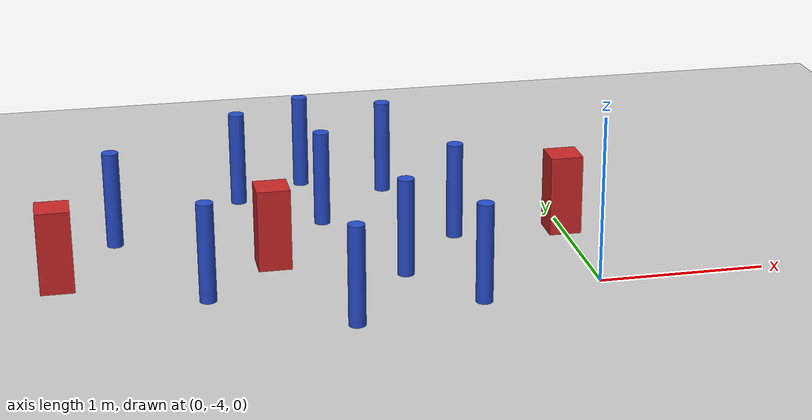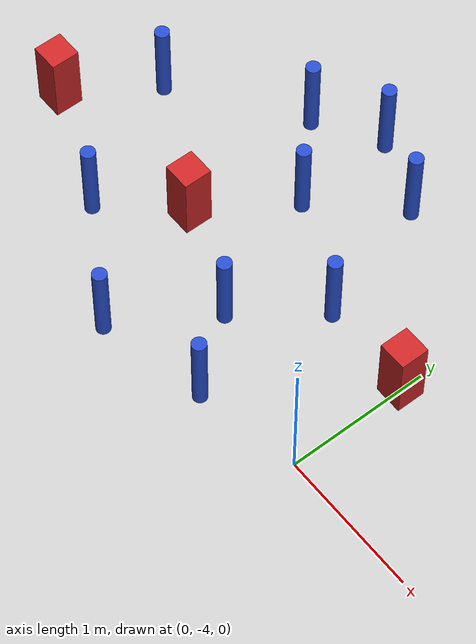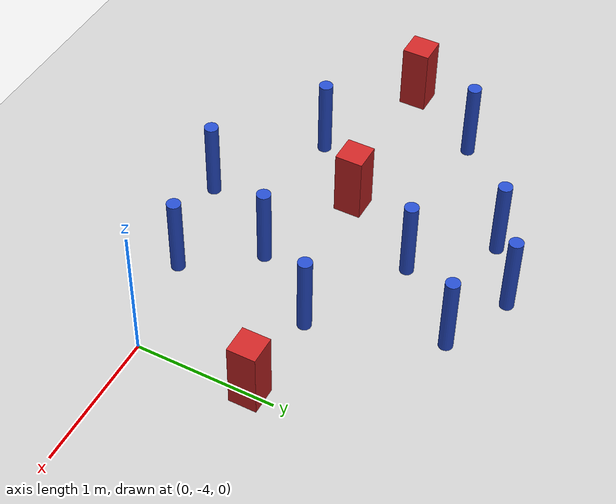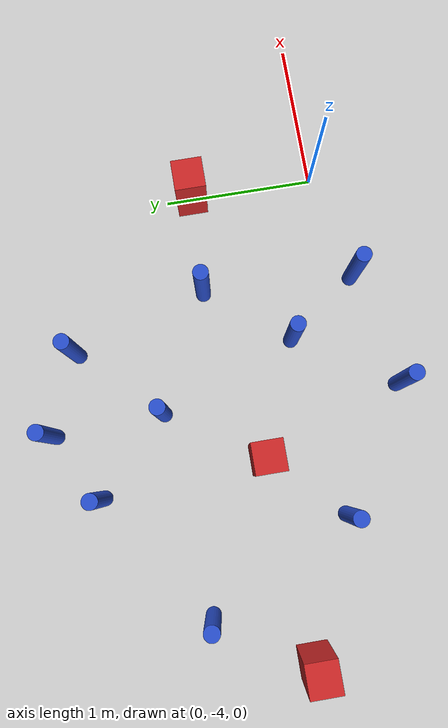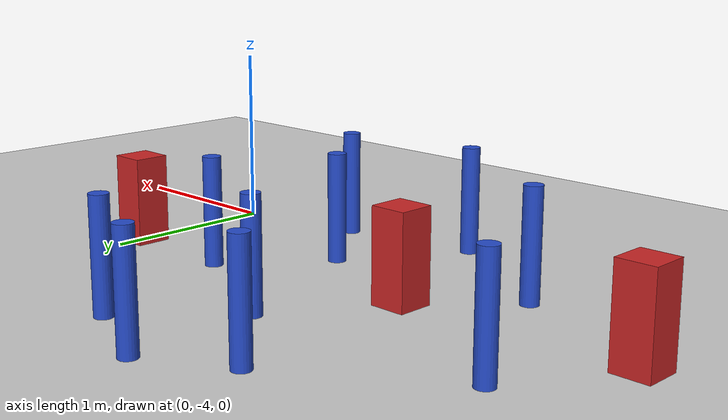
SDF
<sdf version="1.6">
 <world name="default">
  <model name="ground_plane">
   <static>1</static>
   <link name="link">
    <collision name="collision">
     <geometry><plane><normal>0 0 1</normal><size>100 100</size></plane></geometry>
     <surface><friction><ode><mu>100</mu><mu2>50</mu2></ode></friction></surface>
    </collision>
    <visual name="visual">
     <cast_shadows>0</cast_shadows>
     <geometry><plane><normal>0 0 1</normal><size>100 100</size></plane></geometry>
     <material>
      <ambient>1.0 1.0 1.0 1.0</ambient>
      <diffuse>0.8 0.8 0.8 1.0</diffuse>
      <specular>0.01 0.01 0.01 1.000000</specular>
     </material>
    </visual>
   </link>
  </model>
  <model name="square_post_obstacle23">
   <static>true</static>
   <pose>-3.10756083365 -3.45738375206 1.91545236811e-07 -7.35059704564e-06 1.12565212e-07 2.39332434364e-05</pose>
   <link name="link">
    <pose>0 0 0.25 0 -0 0</pose>
    <inertial>
     <mass>100</mass>
     <inertia>
      <ixx>0.166667</ixx>
      <ixy>0</ixy>
      <ixz>0</ixz>
      <iyy>0.166667</iyy>
      <iyz>0</iyz>
      <izz>0.166667</izz>
     </inertia>
    </inertial>
    <collision name="collision"><geometry><box><size>.2 .2 .5</size></box></geometry></collision>
    <visual name="visual">
     <geometry><box><size>.2 .2 .5</size></box></geometry>
     <material>
      <script><name>Gazebo/Red</name><uri>file://media/materials/scripts/gazebo.material</uri></script>
     </material>
    </visual>
   </link>
  </model>
  <model name="pole_obstacle40">
   <static>true</static>
   <pose>-1.49519705118 -4.31215156015 7.38925637345e-09 -8.47170692799e-08 1.24976765033e-08 -1.74513093018e-07</pose>
   <link name="link">
    <pose>0 0 0.3 0 -0 0</pose>
    <inertial>
     <mass>1</mass>
     <inertia><ixx>0.145833</ixx><ixy>0</ixy><ixz>0</ixz><iyy>0.145833</iyy><iyz>0</iyz><izz>0.125</izz></inertia>
    </inertial>
    <collision name="collision">
     <geometry><cylinder><radius>0.05</radius><length>.6</length></cylinder></geometry>
    </collision>
    <visual name="visual">
     <geometry><cylinder><radius>0.05</radius><length>.6</length></cylinder></geometry>
     <material>
      <script><name>Gazebo/Blue</name><uri>file://media/materials/scripts/gazebo.material</uri></script>
     </material>
    </visual>
   </link>
  </model>
  <model name="square_post_obstacle48">
   <static>true</static>
   <pose>-1.83645050394 -3.36982657176 1.91545236811e-07 -7.35059704564e-06 1.12565212e-07 2.39332434364e-05</pose>
   <link name="link">
    <pose>0 0 0.25 0 -0 0</pose>
    <inertial>
     <mass>100</mass>
     <inertia>
      <ixx>0.166667</ixx>
      <ixy>0</ixy>
      <ixz>0</ixz>
      <iyy>0.166667</iyy>
      <iyz>0</iyz>
      <izz>0.166667</izz>
     </inertia>
    </inertial>
    <collision name="collision"><geometry><box><size>.2 .2 .5</size></box></geometry></collision>
    <visual name="visual">
     <geometry><box><size>.2 .2 .5</size></box></geometry>
     <material>
      <script><name>Gazebo/Red</name><uri>file://media/materials/scripts/gazebo.material</uri></script>
     </material>
    </visual>
   </link>
  </model>
  <model name="pole_obstacle48">
   <static>true</static>
   <pose>-0.965469387628 -2.2553306697 7.38925637345e-09 -8.47170692799e-08 1.24976765063e-08 -1.74513093018e-07</pose>
   <link name="link">
    <pose>0 0 0.3 0 -0 0</pose>
    <inertial>
     <mass>1</mass>
     <inertia><ixx>0.145833</ixx><ixy>0</ixy><ixz>0</ixz><iyy>0.145833</iyy><iyz>0</iyz><izz>0.125</izz></inertia>
    </inertial>
    <collision name="collision">
     <geometry><cylinder><radius>0.05</radius><length>.6</length></cylinder></geometry>
    </collision>
    <visual name="visual">
     <geometry><cylinder><radius>0.05</radius><length>.6</length></cylinder></geometry>
     <material>
      <script><name>Gazebo/Blue</name><uri>file://media/materials/scripts/gazebo.material</uri></script>
     </material>
    </visual>
   </link>
  </model>
  <model name="pole_obstacle51">
   <static>true</static>
   <pose>-1.91894833646 -2.29968438132 7.38925637345e-09 -8.47170692799e-08 1.24976765053e-08 -1.74513093017e-07</pose>
   <link name="link">
    <pose>0 0 0.3 0 -0 0</pose>
    <inertial>
     <mass>1</mass>
     <inertia><ixx>0.145833</ixx><ixy>0</ixy><ixz>0</ixz><iyy>0.145833</iyy><iyz>0</iyz><izz>0.125</izz></inertia>
    </inertial>
    <collision name="collision">
     <geometry><cylinder><radius>0.05</radius><length>.6</length></cylinder></geometry>
    </collision>
    <visual name="visual">
     <geometry><cylinder><radius>0.05</radius><length>.6</length></cylinder></geometry>
     <material>
      <script><name>Gazebo/Blue</name><uri>file://media/materials/scripts/gazebo.material</uri></script>
     </material>
    </visual>
   </link>
  </model>
  <model name="pole_obstacle54">
   <static>true</static>
   <pose>-1.44606926043 -2.76261912526 7.38925637345e-09 -8.47170692799e-08 1.24976765053e-08 -1.74513093017e-07</pose>
   <link name="link">
    <pose>0 0 0.3 0 -0 0</pose>
    <inertial>
     <mass>1</mass>
     <inertia><ixx>0.145833</ixx><ixy>0</ixy><ixz>0</ixz><iyy>0.145833</iyy><iyz>0</iyz><izz>0.125</izz></inertia>
    </inertial>
    <collision name="collision">
     <geometry><cylinder><radius>0.05</radius><length>.6</length></cylinder></geometry>
    </collision>
    <visual name="visual">
     <geometry><cylinder><radius>0.05</radius><length>.6</length></cylinder></geometry>
     <material>
      <script><name>Gazebo/Blue</name><uri>file://media/materials/scripts/gazebo.material</uri></script>
     </material>
    </visual>
   </link>
  </model>
  <model name="pole_obstacle76">
   <static>true</static>
   <pose>-2.2700673939 -3.82190759298 7.38925637345e-09 -8.47170692798e-08 1.24976764939e-08 -1.74513093025e-07</pose>
   <link name="link">
    <pose>0 0 0.3 0 -0 0</pose>
    <inertial>
     <mass>1</mass>
     <inertia><ixx>0.145833</ixx><ixy>0</ixy><ixz>0</ixz><iyy>0.145833</iyy><iyz>0</iyz><izz>0.125</izz></inertia>
    </inertial>
    <collision name="collision">
     <geometry><cylinder><radius>0.05</radius><length>.6</length></cylinder></geometry>
    </collision>
    <visual name="visual">
     <geometry><cylinder><radius>0.05</radius><length>.6</length></cylinder></geometry>
     <material>
      <script><name>Gazebo/Blue</name><uri>file://media/materials/scripts/gazebo.material</uri></script>
     </material>
    </visual>
   </link>
  </model>
  <model name="square_post_obstacle80">
   <static>true</static>
   <pose>-0.000718190362245 -3.16822527989 1.91545236811e-07 -7.35059704564e-06 1.12565212e-07 2.39332434364e-05</pose>
   <link name="link">
    <pose>0 0 0.25 0 -0 0</pose>
    <inertial>
     <mass>100</mass>
     <inertia>
      <ixx>0.166667</ixx>
      <ixy>0</ixy>
      <ixz>0</ixz>
      <iyy>0.166667</iyy>
      <iyz>0</iyz>
      <izz>0.166667</izz>
     </inertia>
    </inertial>
    <collision name="collision"><geometry><box><size>.2 .2 .5</size></box></geometry></collision>
    <visual name="visual">
     <geometry><box><size>.2 .2 .5</size></box></geometry>
     <material>
      <script><name>Gazebo/Red</name><uri>file://media/materials/scripts/gazebo.material</uri></script>
     </material>
    </visual>
   </link>
  </model>
  <model name="pole_obstacle112">
   <static>true</static>
   <pose>-2.74373023019 -2.87799243884 7.38925637345e-09 -8.47170692798e-08 1.24976764939e-08 -1.74513093025e-07</pose>
   <link name="link">
    <pose>0 0 0.3 0 -0 0</pose>
    <inertial>
     <mass>1</mass>
     <inertia><ixx>0.145833</ixx><ixy>0</ixy><ixz>0</ixz><iyy>0.145833</iyy><iyz>0</iyz><izz>0.125</izz></inertia>
    </inertial>
    <collision name="collision">
     <geometry><cylinder><radius>0.05</radius><length>.6</length></cylinder></geometry>
    </collision>
    <visual name="visual">
     <geometry><cylinder><radius>0.05</radius><length>.6</length></cylinder></geometry>
     <material>
      <script><name>Gazebo/Blue</name><uri>file://media/materials/scripts/gazebo.material</uri></script>
     </material>
    </visual>
   </link>
  </model>
  <model name="pole_obstacle169">
   <static>true</static>
   <pose>-1.4759065725 -2.04086400207 7.38925637345e-09 -8.47170692798e-08 1.24976764909e-08 -1.74513093024e-07</pose>
   <link name="link">
    <pose>0 0 0.3 0 -0 0</pose>
    <inertial>
     <mass>1</mass>
     <inertia><ixx>0.145833</ixx><ixy>0</ixy><ixz>0</ixz><iyy>0.145833</iyy><iyz>0</iyz><izz>0.125</izz></inertia>
    </inertial>
    <collision name="collision">
     <geometry><cylinder><radius>0.05</radius><length>.6</length></cylinder></geometry>
    </collision>
    <visual name="visual">
     <geometry><cylinder><radius>0.05</radius><length>.6</length></cylinder></geometry>
     <material>
      <script><name>Gazebo/Blue</name><uri>file://media/materials/scripts/gazebo.material</uri></script>
     </material>
    </visual>
   </link>
  </model>
  <model name="pole_obstacle182">
   <static>true</static>
   <pose>-0.732076126556 -4.1470765512 7.38925637345e-09 -8.471706928e-08 1.24976765086e-08 -1.74513093015e-07</pose>
   <link name="link">
    <pose>0 0 0.3 0 -0 0</pose>
    <inertial>
     <mass>1</mass>
     <inertia><ixx>0.145833</ixx><ixy>0</ixy><ixz>0</ixz><iyy>0.145833</iyy><iyz>0</iyz><izz>0.125</izz></inertia>
    </inertial>
    <collision name="collision">
     <geometry><cylinder><radius>0.05</radius><length>.6</length></cylinder></geometry>
    </collision>
    <visual name="visual">
     <geometry><cylinder><radius>0.05</radius><length>.6</length></cylinder></geometry>
     <material>
      <script><name>Gazebo/Blue</name><uri>file://media/materials/scripts/gazebo.material</uri></script>
     </material>
    </visual>
   </link>
  </model>
  <model name="pole_obstacle200">
   <static>true</static>
   <pose>-0.6802872464 -3.14379384145 7.38925637345e-09 -8.47170692799e-08 1.2497676509e-08 -1.74513093016e-07</pose>
   <link name="link">
    <pose>0 0 0.3 0 -0 0</pose>
    <inertial>
     <mass>1</mass>
     <inertia><ixx>0.145833</ixx><ixy>0</ixy><ixz>0</ixz><iyy>0.145833</iyy><iyz>0</iyz><izz>0.125</izz></inertia>
    </inertial>
    <collision name="collision">
     <geometry><cylinder><radius>0.05</radius><length>.6</length></cylinder></geometry>
    </collision>
    <visual name="visual">
     <geometry><cylinder><radius>0.05</radius><length>.6</length></cylinder></geometry>
     <material>
      <script><name>Gazebo/Blue</name><uri>file://media/materials/scripts/gazebo.material</uri></script>
     </material>
    </visual>
   </link>
  </model>
  <model name="pole_obstacle219">
   <static>true</static>
   <pose>-1.09109999043 -3.67226997922 7.38925637345e-09 -8.47170692799e-08 1.24976765053e-08 -1.74513093017e-07</pose>
   <link name="link">
    <pose>0 0 0.3 0 -0 0</pose>
    <inertial>
     <mass>1</mass>
     <inertia><ixx>0.145833</ixx><ixy>0</ixy><ixz>0</ixz><iyy>0.145833</iyy><iyz>0</iyz><izz>0.125</izz></inertia>
    </inertial>
    <collision name="collision">
     <geometry><cylinder><radius>0.05</radius><length>.6</length></cylinder></geometry>
    </collision>
    <visual name="visual">
     <geometry><cylinder><radius>0.05</radius><length>.6</length></cylinder></geometry>
     <material>
      <script><name>Gazebo/Blue</name><uri>file://media/materials/scripts/gazebo.material</uri></script>
     </material>
    </visual>
   </link>
  </model>
 </world>
</sdf>
